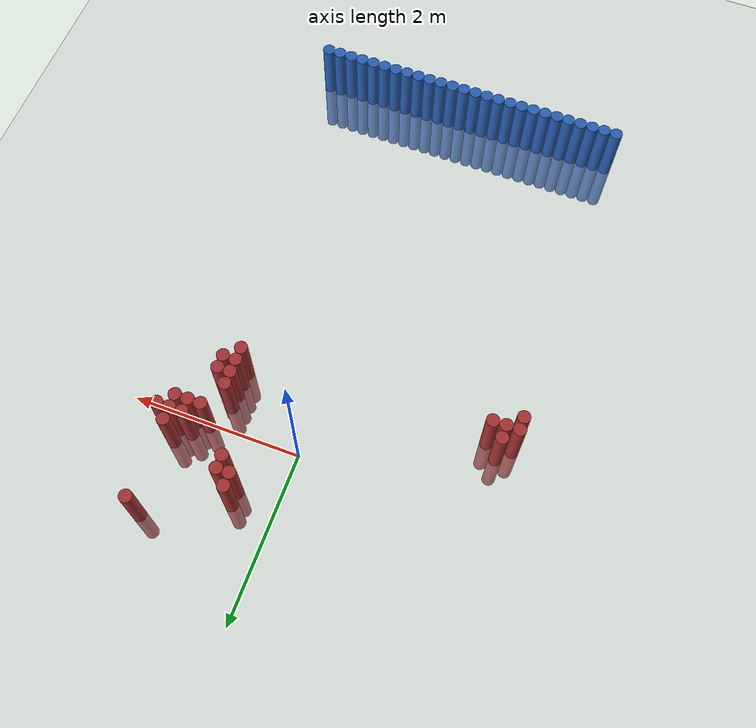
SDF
<sdf version="1.6">
 <world name="default">
  <model name="ground_plane">
   <static>1</static>
   <link name="link">
    <collision name="collision">
     <geometry><plane><normal>0 0 1</normal><size>100 100</size></plane></geometry>
     <surface><friction><ode><mu>100</mu><mu2>50</mu2></ode></friction></surface>
    </collision>
    <visual name="visual">
     <cast_shadows>0</cast_shadows>
     <geometry><plane><normal>0 0 1</normal><size>100 100</size></plane></geometry>
     <material>
      <script><uri>file://media/materials/scripts/gazebo.material</uri><name>Gazebo/Grey</name></script>
     </material>
    </visual>
   </link>
  </model>
  <model name="unit_cylinder_16">
   <static>1</static>
   <pose>1.525000 -4.925000 0.000000 0.000000 0.000000 0.000000</pose>
   <link name="link">
    <inertial>
     <mass>1</mass>
     <inertia><ixx>0.145833</ixx><ixy>0</ixy><ixz>0</ixz><iyy>0.145833</iyy><iyz>0</iyz><izz>0.125</izz></inertia>
    </inertial>
    <collision name="collision">
     <geometry><cylinder><radius>0.075000</radius><length>1.5</length></cylinder></geometry>
    </collision>
    <visual name="visual">
     <geometry><cylinder><radius>0.075000</radius><length>1.5</length></cylinder></geometry>
     <material>
      <ambient>0.152000 0.379000 0.720000 1</ambient>
      <diffuse>0.152000 0.379000 0.720000 1</diffuse>
     </material>
     <material>
      <script><name>Gazebo/Grey</name><uri>file://media/materials/scripts/gazebo.material</uri></script>
     </material>
    </visual>
   </link>
  </model>
  <model name="unit_cylinder_17">
   <static>1</static>
   <pose>1.375000 -4.925000 0.000000 0.000000 0.000000 0.000000</pose>
   <link name="link">
    <inertial>
     <mass>1</mass>
     <inertia><ixx>0.145833</ixx><ixy>0</ixy><ixz>0</ixz><iyy>0.145833</iyy><iyz>0</iyz><izz>0.125</izz></inertia>
    </inertial>
    <collision name="collision">
     <geometry><cylinder><radius>0.075000</radius><length>1.5</length></cylinder></geometry>
    </collision>
    <visual name="visual">
     <geometry><cylinder><radius>0.075000</radius><length>1.5</length></cylinder></geometry>
     <material>
      <ambient>0.152000 0.379000 0.720000 1</ambient>
      <diffuse>0.152000 0.379000 0.720000 1</diffuse>
     </material>
     <material>
      <script><name>Gazebo/Grey</name><uri>file://media/materials/scripts/gazebo.material</uri></script>
     </material>
    </visual>
   </link>
  </model>
  <model name="unit_cylinder_18">
   <static>1</static>
   <pose>1.225000 -4.925000 0.000000 0.000000 0.000000 0.000000</pose>
   <link name="link">
    <inertial>
     <mass>1</mass>
     <inertia><ixx>0.145833</ixx><ixy>0</ixy><ixz>0</ixz><iyy>0.145833</iyy><iyz>0</iyz><izz>0.125</izz></inertia>
    </inertial>
    <collision name="collision">
     <geometry><cylinder><radius>0.075000</radius><length>1.5</length></cylinder></geometry>
    </collision>
    <visual name="visual">
     <geometry><cylinder><radius>0.075000</radius><length>1.5</length></cylinder></geometry>
     <material>
      <ambient>0.152000 0.379000 0.720000 1</ambient>
      <diffuse>0.152000 0.379000 0.720000 1</diffuse>
     </material>
     <material>
      <script><name>Gazebo/Grey</name><uri>file://media/materials/scripts/gazebo.material</uri></script>
     </material>
    </visual>
   </link>
  </model>
  <model name="unit_cylinder_19">
   <static>1</static>
   <pose>1.075000 -4.925000 0.000000 0.000000 0.000000 0.000000</pose>
   <link name="link">
    <inertial>
     <mass>1</mass>
     <inertia><ixx>0.145833</ixx><ixy>0</ixy><ixz>0</ixz><iyy>0.145833</iyy><iyz>0</iyz><izz>0.125</izz></inertia>
    </inertial>
    <collision name="collision">
     <geometry><cylinder><radius>0.075000</radius><length>1.5</length></cylinder></geometry>
    </collision>
    <visual name="visual">
     <geometry><cylinder><radius>0.075000</radius><length>1.5</length></cylinder></geometry>
     <material>
      <ambient>0.152000 0.379000 0.720000 1</ambient>
      <diffuse>0.152000 0.379000 0.720000 1</diffuse>
     </material>
     <material>
      <script><name>Gazebo/Grey</name><uri>file://media/materials/scripts/gazebo.material</uri></script>
     </material>
    </visual>
   </link>
  </model>
  <model name="unit_cylinder_20">
   <static>1</static>
   <pose>0.925000 -4.925000 0.000000 0.000000 0.000000 0.000000</pose>
   <link name="link">
    <inertial>
     <mass>1</mass>
     <inertia><ixx>0.145833</ixx><ixy>0</ixy><ixz>0</ixz><iyy>0.145833</iyy><iyz>0</iyz><izz>0.125</izz></inertia>
    </inertial>
    <collision name="collision">
     <geometry><cylinder><radius>0.075000</radius><length>1.5</length></cylinder></geometry>
    </collision>
    <visual name="visual">
     <geometry><cylinder><radius>0.075000</radius><length>1.5</length></cylinder></geometry>
     <material>
      <ambient>0.152000 0.379000 0.720000 1</ambient>
      <diffuse>0.152000 0.379000 0.720000 1</diffuse>
     </material>
     <material>
      <script><name>Gazebo/Grey</name><uri>file://media/materials/scripts/gazebo.material</uri></script>
     </material>
    </visual>
   </link>
  </model>
  <model name="unit_cylinder_21">
   <static>1</static>
   <pose>0.775000 -4.925000 0.000000 0.000000 0.000000 0.000000</pose>
   <link name="link">
    <inertial>
     <mass>1</mass>
     <inertia><ixx>0.145833</ixx><ixy>0</ixy><ixz>0</ixz><iyy>0.145833</iyy><iyz>0</iyz><izz>0.125</izz></inertia>
    </inertial>
    <collision name="collision">
     <geometry><cylinder><radius>0.075000</radius><length>1.5</length></cylinder></geometry>
    </collision>
    <visual name="visual">
     <geometry><cylinder><radius>0.075000</radius><length>1.5</length></cylinder></geometry>
     <material>
      <ambient>0.152000 0.379000 0.720000 1</ambient>
      <diffuse>0.152000 0.379000 0.720000 1</diffuse>
     </material>
     <material>
      <script><name>Gazebo/Grey</name><uri>file://media/materials/scripts/gazebo.material</uri></script>
     </material>
    </visual>
   </link>
  </model>
  <model name="unit_cylinder_22">
   <static>1</static>
   <pose>0.625000 -4.925000 0.000000 0.000000 0.000000 0.000000</pose>
   <link name="link">
    <inertial>
     <mass>1</mass>
     <inertia><ixx>0.145833</ixx><ixy>0</ixy><ixz>0</ixz><iyy>0.145833</iyy><iyz>0</iyz><izz>0.125</izz></inertia>
    </inertial>
    <collision name="collision">
     <geometry><cylinder><radius>0.075000</radius><length>1.5</length></cylinder></geometry>
    </collision>
    <visual name="visual">
     <geometry><cylinder><radius>0.075000</radius><length>1.5</length></cylinder></geometry>
     <material>
      <ambient>0.152000 0.379000 0.720000 1</ambient>
      <diffuse>0.152000 0.379000 0.720000 1</diffuse>
     </material>
     <material>
      <script><name>Gazebo/Grey</name><uri>file://media/materials/scripts/gazebo.material</uri></script>
     </material>
    </visual>
   </link>
  </model>
  <model name="unit_cylinder_23">
   <static>1</static>
   <pose>0.475000 -4.925000 0.000000 0.000000 0.000000 0.000000</pose>
   <link name="link">
    <inertial>
     <mass>1</mass>
     <inertia><ixx>0.145833</ixx><ixy>0</ixy><ixz>0</ixz><iyy>0.145833</iyy><iyz>0</iyz><izz>0.125</izz></inertia>
    </inertial>
    <collision name="collision">
     <geometry><cylinder><radius>0.075000</radius><length>1.5</length></cylinder></geometry>
    </collision>
    <visual name="visual">
     <geometry><cylinder><radius>0.075000</radius><length>1.5</length></cylinder></geometry>
     <material>
      <ambient>0.152000 0.379000 0.720000 1</ambient>
      <diffuse>0.152000 0.379000 0.720000 1</diffuse>
     </material>
     <material>
      <script><name>Gazebo/Grey</name><uri>file://media/materials/scripts/gazebo.material</uri></script>
     </material>
    </visual>
   </link>
  </model>
  <model name="unit_cylinder_24">
   <static>1</static>
   <pose>0.325000 -4.925000 0.000000 0.000000 0.000000 0.000000</pose>
   <link name="link">
    <inertial>
     <mass>1</mass>
     <inertia><ixx>0.145833</ixx><ixy>0</ixy><ixz>0</ixz><iyy>0.145833</iyy><iyz>0</iyz><izz>0.125</izz></inertia>
    </inertial>
    <collision name="collision">
     <geometry><cylinder><radius>0.075000</radius><length>1.5</length></cylinder></geometry>
    </collision>
    <visual name="visual">
     <geometry><cylinder><radius>0.075000</radius><length>1.5</length></cylinder></geometry>
     <material>
      <ambient>0.152000 0.379000 0.720000 1</ambient>
      <diffuse>0.152000 0.379000 0.720000 1</diffuse>
     </material>
     <material>
      <script><name>Gazebo/Grey</name><uri>file://media/materials/scripts/gazebo.material</uri></script>
     </material>
    </visual>
   </link>
  </model>
  <model name="unit_cylinder_25">
   <static>1</static>
   <pose>0.175000 -4.925000 0.000000 0.000000 0.000000 0.000000</pose>
   <link name="link">
    <inertial>
     <mass>1</mass>
     <inertia><ixx>0.145833</ixx><ixy>0</ixy><ixz>0</ixz><iyy>0.145833</iyy><iyz>0</iyz><izz>0.125</izz></inertia>
    </inertial>
    <collision name="collision">
     <geometry><cylinder><radius>0.075000</radius><length>1.5</length></cylinder></geometry>
    </collision>
    <visual name="visual">
     <geometry><cylinder><radius>0.075000</radius><length>1.5</length></cylinder></geometry>
     <material>
      <ambient>0.152000 0.379000 0.720000 1</ambient>
      <diffuse>0.152000 0.379000 0.720000 1</diffuse>
     </material>
     <material>
      <script><name>Gazebo/Grey</name><uri>file://media/materials/scripts/gazebo.material</uri></script>
     </material>
    </visual>
   </link>
  </model>
  <model name="unit_cylinder_26">
   <static>1</static>
   <pose>0.025000 -4.925000 0.000000 0.000000 0.000000 0.000000</pose>
   <link name="link">
    <inertial>
     <mass>1</mass>
     <inertia><ixx>0.145833</ixx><ixy>0</ixy><ixz>0</ixz><iyy>0.145833</iyy><iyz>0</iyz><izz>0.125</izz></inertia>
    </inertial>
    <collision name="collision">
     <geometry><cylinder><radius>0.075000</radius><length>1.5</length></cylinder></geometry>
    </collision>
    <visual name="visual">
     <geometry><cylinder><radius>0.075000</radius><length>1.5</length></cylinder></geometry>
     <material>
      <ambient>0.152000 0.379000 0.720000 1</ambient>
      <diffuse>0.152000 0.379000 0.720000 1</diffuse>
     </material>
     <material>
      <script><name>Gazebo/Grey</name><uri>file://media/materials/scripts/gazebo.material</uri></script>
     </material>
    </visual>
   </link>
  </model>
  <model name="unit_cylinder_27">
   <static>1</static>
   <pose>-0.125000 -4.925000 0.000000 0.000000 0.000000 0.000000</pose>
   <link name="link">
    <inertial>
     <mass>1</mass>
     <inertia><ixx>0.145833</ixx><ixy>0</ixy><ixz>0</ixz><iyy>0.145833</iyy><iyz>0</iyz><izz>0.125</izz></inertia>
    </inertial>
    <collision name="collision">
     <geometry><cylinder><radius>0.075000</radius><length>1.5</length></cylinder></geometry>
    </collision>
    <visual name="visual">
     <geometry><cylinder><radius>0.075000</radius><length>1.5</length></cylinder></geometry>
     <material>
      <ambient>0.152000 0.379000 0.720000 1</ambient>
      <diffuse>0.152000 0.379000 0.720000 1</diffuse>
     </material>
     <material>
      <script><name>Gazebo/Grey</name><uri>file://media/materials/scripts/gazebo.material</uri></script>
     </material>
    </visual>
   </link>
  </model>
  <model name="unit_cylinder_28">
   <static>1</static>
   <pose>-0.275000 -4.925000 0.000000 0.000000 0.000000 0.000000</pose>
   <link name="link">
    <inertial>
     <mass>1</mass>
     <inertia><ixx>0.145833</ixx><ixy>0</ixy><ixz>0</ixz><iyy>0.145833</iyy><iyz>0</iyz><izz>0.125</izz></inertia>
    </inertial>
    <collision name="collision">
     <geometry><cylinder><radius>0.075000</radius><length>1.5</length></cylinder></geometry>
    </collision>
    <visual name="visual">
     <geometry><cylinder><radius>0.075000</radius><length>1.5</length></cylinder></geometry>
     <material>
      <ambient>0.152000 0.379000 0.720000 1</ambient>
      <diffuse>0.152000 0.379000 0.720000 1</diffuse>
     </material>
     <material>
      <script><name>Gazebo/Grey</name><uri>file://media/materials/scripts/gazebo.material</uri></script>
     </material>
    </visual>
   </link>
  </model>
  <model name="unit_cylinder_29">
   <static>1</static>
   <pose>-0.425000 -4.925000 0.000000 0.000000 0.000000 0.000000</pose>
   <link name="link">
    <inertial>
     <mass>1</mass>
     <inertia><ixx>0.145833</ixx><ixy>0</ixy><ixz>0</ixz><iyy>0.145833</iyy><iyz>0</iyz><izz>0.125</izz></inertia>
    </inertial>
    <collision name="collision">
     <geometry><cylinder><radius>0.075000</radius><length>1.5</length></cylinder></geometry>
    </collision>
    <visual name="visual">
     <geometry><cylinder><radius>0.075000</radius><length>1.5</length></cylinder></geometry>
     <material>
      <ambient>0.152000 0.379000 0.720000 1</ambient>
      <diffuse>0.152000 0.379000 0.720000 1</diffuse>
     </material>
     <material>
      <script><name>Gazebo/Grey</name><uri>file://media/materials/scripts/gazebo.material</uri></script>
     </material>
    </visual>
   </link>
  </model>
  <model name="unit_cylinder_30">
   <static>1</static>
   <pose>-0.575000 -4.925000 0.000000 0.000000 0.000000 0.000000</pose>
   <link name="link">
    <inertial>
     <mass>1</mass>
     <inertia><ixx>0.145833</ixx><ixy>0</ixy><ixz>0</ixz><iyy>0.145833</iyy><iyz>0</iyz><izz>0.125</izz></inertia>
    </inertial>
    <collision name="collision">
     <geometry><cylinder><radius>0.075000</radius><length>1.5</length></cylinder></geometry>
    </collision>
    <visual name="visual">
     <geometry><cylinder><radius>0.075000</radius><length>1.5</length></cylinder></geometry>
     <material>
      <ambient>0.152000 0.379000 0.720000 1</ambient>
      <diffuse>0.152000 0.379000 0.720000 1</diffuse>
     </material>
     <material>
      <script><name>Gazebo/Grey</name><uri>file://media/materials/scripts/gazebo.material</uri></script>
     </material>
    </visual>
   </link>
  </model>
  <model name="unit_cylinder_31">
   <static>1</static>
   <pose>-0.725000 -4.925000 0.000000 0.000000 0.000000 0.000000</pose>
   <link name="link">
    <inertial>
     <mass>1</mass>
     <inertia><ixx>0.145833</ixx><ixy>0</ixy><ixz>0</ixz><iyy>0.145833</iyy><iyz>0</iyz><izz>0.125</izz></inertia>
    </inertial>
    <collision name="collision">
     <geometry><cylinder><radius>0.075000</radius><length>1.5</length></cylinder></geometry>
    </collision>
    <visual name="visual">
     <geometry><cylinder><radius>0.075000</radius><length>1.5</length></cylinder></geometry>
     <material>
      <ambient>0.152000 0.379000 0.720000 1</ambient>
      <diffuse>0.152000 0.379000 0.720000 1</diffuse>
     </material>
     <material>
      <script><name>Gazebo/Grey</name><uri>file://media/materials/scripts/gazebo.material</uri></script>
     </material>
    </visual>
   </link>
  </model>
  <model name="unit_cylinder_32">
   <static>1</static>
   <pose>-0.875000 -4.925000 0.000000 0.000000 0.000000 0.000000</pose>
   <link name="link">
    <inertial>
     <mass>1</mass>
     <inertia><ixx>0.145833</ixx><ixy>0</ixy><ixz>0</ixz><iyy>0.145833</iyy><iyz>0</iyz><izz>0.125</izz></inertia>
    </inertial>
    <collision name="collision">
     <geometry><cylinder><radius>0.075000</radius><length>1.5</length></cylinder></geometry>
    </collision>
    <visual name="visual">
     <geometry><cylinder><radius>0.075000</radius><length>1.5</length></cylinder></geometry>
     <material>
      <ambient>0.152000 0.379000 0.720000 1</ambient>
      <diffuse>0.152000 0.379000 0.720000 1</diffuse>
     </material>
     <material>
      <script><name>Gazebo/Grey</name><uri>file://media/materials/scripts/gazebo.material</uri></script>
     </material>
    </visual>
   </link>
  </model>
  <model name="unit_cylinder_33">
   <static>1</static>
   <pose>-1.025000 -4.925000 0.000000 0.000000 0.000000 0.000000</pose>
   <link name="link">
    <inertial>
     <mass>1</mass>
     <inertia><ixx>0.145833</ixx><ixy>0</ixy><ixz>0</ixz><iyy>0.145833</iyy><iyz>0</iyz><izz>0.125</izz></inertia>
    </inertial>
    <collision name="collision">
     <geometry><cylinder><radius>0.075000</radius><length>1.5</length></cylinder></geometry>
    </collision>
    <visual name="visual">
     <geometry><cylinder><radius>0.075000</radius><length>1.5</length></cylinder></geometry>
     <material>
      <ambient>0.152000 0.379000 0.720000 1</ambient>
      <diffuse>0.152000 0.379000 0.720000 1</diffuse>
     </material>
     <material>
      <script><name>Gazebo/Grey</name><uri>file://media/materials/scripts/gazebo.material</uri></script>
     </material>
    </visual>
   </link>
  </model>
  <model name="unit_cylinder_34">
   <static>1</static>
   <pose>-1.175000 -4.925000 0.000000 0.000000 0.000000 0.000000</pose>
   <link name="link">
    <inertial>
     <mass>1</mass>
     <inertia><ixx>0.145833</ixx><ixy>0</ixy><ixz>0</ixz><iyy>0.145833</iyy><iyz>0</iyz><izz>0.125</izz></inertia>
    </inertial>
    <collision name="collision">
     <geometry><cylinder><radius>0.075000</radius><length>1.5</length></cylinder></geometry>
    </collision>
    <visual name="visual">
     <geometry><cylinder><radius>0.075000</radius><length>1.5</length></cylinder></geometry>
     <material>
      <ambient>0.152000 0.379000 0.720000 1</ambient>
      <diffuse>0.152000 0.379000 0.720000 1</diffuse>
     </material>
     <material>
      <script><name>Gazebo/Grey</name><uri>file://media/materials/scripts/gazebo.material</uri></script>
     </material>
    </visual>
   </link>
  </model>
  <model name="unit_cylinder_35">
   <static>1</static>
   <pose>-1.325000 -4.925000 0.000000 0.000000 0.000000 0.000000</pose>
   <link name="link">
    <inertial>
     <mass>1</mass>
     <inertia><ixx>0.145833</ixx><ixy>0</ixy><ixz>0</ixz><iyy>0.145833</iyy><iyz>0</iyz><izz>0.125</izz></inertia>
    </inertial>
    <collision name="collision">
     <geometry><cylinder><radius>0.075000</radius><length>1.5</length></cylinder></geometry>
    </collision>
    <visual name="visual">
     <geometry><cylinder><radius>0.075000</radius><length>1.5</length></cylinder></geometry>
     <material>
      <ambient>0.152000 0.379000 0.720000 1</ambient>
      <diffuse>0.152000 0.379000 0.720000 1</diffuse>
     </material>
     <material>
      <script><name>Gazebo/Grey</name><uri>file://media/materials/scripts/gazebo.material</uri></script>
     </material>
    </visual>
   </link>
  </model>
  <model name="unit_cylinder_36">
   <static>1</static>
   <pose>-1.475000 -4.925000 0.000000 0.000000 0.000000 0.000000</pose>
   <link name="link">
    <inertial>
     <mass>1</mass>
     <inertia><ixx>0.145833</ixx><ixy>0</ixy><ixz>0</ixz><iyy>0.145833</iyy><iyz>0</iyz><izz>0.125</izz></inertia>
    </inertial>
    <collision name="collision">
     <geometry><cylinder><radius>0.075000</radius><length>1.5</length></cylinder></geometry>
    </collision>
    <visual name="visual">
     <geometry><cylinder><radius>0.075000</radius><length>1.5</length></cylinder></geometry>
     <material>
      <ambient>0.152000 0.379000 0.720000 1</ambient>
      <diffuse>0.152000 0.379000 0.720000 1</diffuse>
     </material>
     <material>
      <script><name>Gazebo/Grey</name><uri>file://media/materials/scripts/gazebo.material</uri></script>
     </material>
    </visual>
   </link>
  </model>
  <model name="unit_cylinder_37">
   <static>1</static>
   <pose>-1.625000 -4.925000 0.000000 0.000000 0.000000 0.000000</pose>
   <link name="link">
    <inertial>
     <mass>1</mass>
     <inertia><ixx>0.145833</ixx><ixy>0</ixy><ixz>0</ixz><iyy>0.145833</iyy><iyz>0</iyz><izz>0.125</izz></inertia>
    </inertial>
    <collision name="collision">
     <geometry><cylinder><radius>0.075000</radius><length>1.5</length></cylinder></geometry>
    </collision>
    <visual name="visual">
     <geometry><cylinder><radius>0.075000</radius><length>1.5</length></cylinder></geometry>
     <material>
      <ambient>0.152000 0.379000 0.720000 1</ambient>
      <diffuse>0.152000 0.379000 0.720000 1</diffuse>
     </material>
     <material>
      <script><name>Gazebo/Grey</name><uri>file://media/materials/scripts/gazebo.material</uri></script>
     </material>
    </visual>
   </link>
  </model>
  <model name="unit_cylinder_38">
   <static>1</static>
   <pose>-1.775000 -4.925000 0.000000 0.000000 0.000000 0.000000</pose>
   <link name="link">
    <inertial>
     <mass>1</mass>
     <inertia><ixx>0.145833</ixx><ixy>0</ixy><ixz>0</ixz><iyy>0.145833</iyy><iyz>0</iyz><izz>0.125</izz></inertia>
    </inertial>
    <collision name="collision">
     <geometry><cylinder><radius>0.075000</radius><length>1.5</length></cylinder></geometry>
    </collision>
    <visual name="visual">
     <geometry><cylinder><radius>0.075000</radius><length>1.5</length></cylinder></geometry>
     <material>
      <ambient>0.152000 0.379000 0.720000 1</ambient>
      <diffuse>0.152000 0.379000 0.720000 1</diffuse>
     </material>
     <material>
      <script><name>Gazebo/Grey</name><uri>file://media/materials/scripts/gazebo.material</uri></script>
     </material>
    </visual>
   </link>
  </model>
  <model name="unit_cylinder_39">
   <static>1</static>
   <pose>-1.925000 -4.925000 0.000000 0.000000 0.000000 0.000000</pose>
   <link name="link">
    <inertial>
     <mass>1</mass>
     <inertia><ixx>0.145833</ixx><ixy>0</ixy><ixz>0</ixz><iyy>0.145833</iyy><iyz>0</iyz><izz>0.125</izz></inertia>
    </inertial>
    <collision name="collision">
     <geometry><cylinder><radius>0.075000</radius><length>1.5</length></cylinder></geometry>
    </collision>
    <visual name="visual">
     <geometry><cylinder><radius>0.075000</radius><length>1.5</length></cylinder></geometry>
     <material>
      <ambient>0.152000 0.379000 0.720000 1</ambient>
      <diffuse>0.152000 0.379000 0.720000 1</diffuse>
     </material>
     <material>
      <script><name>Gazebo/Grey</name><uri>file://media/materials/scripts/gazebo.material</uri></script>
     </material>
    </visual>
   </link>
  </model>
  <model name="unit_cylinder_40">
   <static>1</static>
   <pose>-2.075000 -4.925000 0.000000 0.000000 0.000000 0.000000</pose>
   <link name="link">
    <inertial>
     <mass>1</mass>
     <inertia><ixx>0.145833</ixx><ixy>0</ixy><ixz>0</ixz><iyy>0.145833</iyy><iyz>0</iyz><izz>0.125</izz></inertia>
    </inertial>
    <collision name="collision">
     <geometry><cylinder><radius>0.075000</radius><length>1.5</length></cylinder></geometry>
    </collision>
    <visual name="visual">
     <geometry><cylinder><radius>0.075000</radius><length>1.5</length></cylinder></geometry>
     <material>
      <ambient>0.152000 0.379000 0.720000 1</ambient>
      <diffuse>0.152000 0.379000 0.720000 1</diffuse>
     </material>
     <material>
      <script><name>Gazebo/Grey</name><uri>file://media/materials/scripts/gazebo.material</uri></script>
     </material>
    </visual>
   </link>
  </model>
  <model name="unit_cylinder_41">
   <static>1</static>
   <pose>-2.225000 -4.925000 0.000000 0.000000 0.000000 0.000000</pose>
   <link name="link">
    <inertial>
     <mass>1</mass>
     <inertia><ixx>0.145833</ixx><ixy>0</ixy><ixz>0</ixz><iyy>0.145833</iyy><iyz>0</iyz><izz>0.125</izz></inertia>
    </inertial>
    <collision name="collision">
     <geometry><cylinder><radius>0.075000</radius><length>1.5</length></cylinder></geometry>
    </collision>
    <visual name="visual">
     <geometry><cylinder><radius>0.075000</radius><length>1.5</length></cylinder></geometry>
     <material>
      <ambient>0.152000 0.379000 0.720000 1</ambient>
      <diffuse>0.152000 0.379000 0.720000 1</diffuse>
     </material>
     <material>
      <script><name>Gazebo/Grey</name><uri>file://media/materials/scripts/gazebo.material</uri></script>
     </material>
    </visual>
   </link>
  </model>
  <model name="unit_cylinder_300">
   <static>1</static>
   <pose>-2.225000 -1.025000 0.000000 0.000000 0.000000 0.000000</pose>
   <link name="link">
    <inertial>
     <mass>1</mass>
     <inertia><ixx>0.145833</ixx><ixy>0</ixy><ixz>0</ixz><iyy>0.145833</iyy><iyz>0</iyz><izz>0.125</izz></inertia>
    </inertial>
    <collision name="collision">
     <geometry><cylinder><radius>0.075000</radius><length>1.5</length></cylinder></geometry>
    </collision>
    <visual name="visual">
     <geometry><cylinder><radius>0.075000</radius><length>1.5</length></cylinder></geometry>
     <material>
      <ambient>0.648000 0.192000 0.192000 1</ambient>
      <diffuse>0.648000 0.192000 0.192000 1</diffuse>
     </material>
     <material>
      <script><name>Gazebo/Grey</name><uri>file://media/materials/scripts/gazebo.material</uri></script>
     </material>
    </visual>
   </link>
  </model>
  <model name="unit_cylinder_301">
   <static>1</static>
   <pose>-2.225000 -0.875000 0.000000 0.000000 0.000000 0.000000</pose>
   <link name="link">
    <inertial>
     <mass>1</mass>
     <inertia><ixx>0.145833</ixx><ixy>0</ixy><ixz>0</ixz><iyy>0.145833</iyy><iyz>0</iyz><izz>0.125</izz></inertia>
    </inertial>
    <collision name="collision">
     <geometry><cylinder><radius>0.075000</radius><length>1.5</length></cylinder></geometry>
    </collision>
    <visual name="visual">
     <geometry><cylinder><radius>0.075000</radius><length>1.5</length></cylinder></geometry>
     <material>
      <ambient>0.648000 0.192000 0.192000 1</ambient>
      <diffuse>0.648000 0.192000 0.192000 1</diffuse>
     </material>
     <material>
      <script><name>Gazebo/Grey</name><uri>file://media/materials/scripts/gazebo.material</uri></script>
     </material>
    </visual>
   </link>
  </model>
  <model name="unit_cylinder_305">
   <static>1</static>
   <pose>-2.075000 -0.875000 0.000000 0.000000 0.000000 0.000000</pose>
   <link name="link">
    <inertial>
     <mass>1</mass>
     <inertia><ixx>0.145833</ixx><ixy>0</ixy><ixz>0</ixz><iyy>0.145833</iyy><iyz>0</iyz><izz>0.125</izz></inertia>
    </inertial>
    <collision name="collision">
     <geometry><cylinder><radius>0.075000</radius><length>1.5</length></cylinder></geometry>
    </collision>
    <visual name="visual">
     <geometry><cylinder><radius>0.075000</radius><length>1.5</length></cylinder></geometry>
     <material>
      <ambient>0.648000 0.192000 0.192000 1</ambient>
      <diffuse>0.648000 0.192000 0.192000 1</diffuse>
     </material>
     <material>
      <script><name>Gazebo/Grey</name><uri>file://media/materials/scripts/gazebo.material</uri></script>
     </material>
    </visual>
   </link>
  </model>
  <model name="unit_cylinder_306">
   <static>1</static>
   <pose>-2.075000 -0.725000 0.000000 0.000000 0.000000 0.000000</pose>
   <link name="link">
    <inertial>
     <mass>1</mass>
     <inertia><ixx>0.145833</ixx><ixy>0</ixy><ixz>0</ixz><iyy>0.145833</iyy><iyz>0</iyz><izz>0.125</izz></inertia>
    </inertial>
    <collision name="collision">
     <geometry><cylinder><radius>0.075000</radius><length>1.5</length></cylinder></geometry>
    </collision>
    <visual name="visual">
     <geometry><cylinder><radius>0.075000</radius><length>1.5</length></cylinder></geometry>
     <material>
      <ambient>0.648000 0.192000 0.192000 1</ambient>
      <diffuse>0.648000 0.192000 0.192000 1</diffuse>
     </material>
     <material>
      <script><name>Gazebo/Grey</name><uri>file://media/materials/scripts/gazebo.material</uri></script>
     </material>
    </visual>
   </link>
  </model>
  <model name="unit_cylinder_310">
   <static>1</static>
   <pose>-1.925000 -0.875000 0.000000 0.000000 0.000000 0.000000</pose>
   <link name="link">
    <inertial>
     <mass>1</mass>
     <inertia><ixx>0.145833</ixx><ixy>0</ixy><ixz>0</ixz><iyy>0.145833</iyy><iyz>0</iyz><izz>0.125</izz></inertia>
    </inertial>
    <collision name="collision">
     <geometry><cylinder><radius>0.075000</radius><length>1.5</length></cylinder></geometry>
    </collision>
    <visual name="visual">
     <geometry><cylinder><radius>0.075000</radius><length>1.5</length></cylinder></geometry>
     <material>
      <ambient>0.648000 0.192000 0.192000 1</ambient>
      <diffuse>0.648000 0.192000 0.192000 1</diffuse>
     </material>
     <material>
      <script><name>Gazebo/Grey</name><uri>file://media/materials/scripts/gazebo.material</uri></script>
     </material>
    </visual>
   </link>
  </model>
  <model name="unit_cylinder_340">
   <static>1</static>
   <pose>0.475000 0.625000 0.000000 0.000000 0.000000 0.000000</pose>
   <link name="link">
    <inertial>
     <mass>1</mass>
     <inertia><ixx>0.145833</ixx><ixy>0</ixy><ixz>0</ixz><iyy>0.145833</iyy><iyz>0</iyz><izz>0.125</izz></inertia>
    </inertial>
    <collision name="collision">
     <geometry><cylinder><radius>0.075000</radius><length>1.5</length></cylinder></geometry>
    </collision>
    <visual name="visual">
     <geometry><cylinder><radius>0.075000</radius><length>1.5</length></cylinder></geometry>
     <material>
      <ambient>0.648000 0.192000 0.192000 1</ambient>
      <diffuse>0.648000 0.192000 0.192000 1</diffuse>
     </material>
     <material>
      <script><name>Gazebo/Grey</name><uri>file://media/materials/scripts/gazebo.material</uri></script>
     </material>
    </visual>
   </link>
  </model>
  <model name="unit_cylinder_341">
   <static>1</static>
   <pose>0.475000 0.775000 0.000000 0.000000 0.000000 0.000000</pose>
   <link name="link">
    <inertial>
     <mass>1</mass>
     <inertia><ixx>0.145833</ixx><ixy>0</ixy><ixz>0</ixz><iyy>0.145833</iyy><iyz>0</iyz><izz>0.125</izz></inertia>
    </inertial>
    <collision name="collision">
     <geometry><cylinder><radius>0.075000</radius><length>1.5</length></cylinder></geometry>
    </collision>
    <visual name="visual">
     <geometry><cylinder><radius>0.075000</radius><length>1.5</length></cylinder></geometry>
     <material>
      <ambient>0.648000 0.192000 0.192000 1</ambient>
      <diffuse>0.648000 0.192000 0.192000 1</diffuse>
     </material>
     <material>
      <script><name>Gazebo/Grey</name><uri>file://media/materials/scripts/gazebo.material</uri></script>
     </material>
    </visual>
   </link>
  </model>
  <model name="unit_cylinder_348">
   <static>1</static>
   <pose>0.625000 0.475000 0.000000 0.000000 0.000000 0.000000</pose>
   <link name="link">
    <inertial>
     <mass>1</mass>
     <inertia><ixx>0.145833</ixx><ixy>0</ixy><ixz>0</ixz><iyy>0.145833</iyy><iyz>0</iyz><izz>0.125</izz></inertia>
    </inertial>
    <collision name="collision">
     <geometry><cylinder><radius>0.075000</radius><length>1.5</length></cylinder></geometry>
    </collision>
    <visual name="visual">
     <geometry><cylinder><radius>0.075000</radius><length>1.5</length></cylinder></geometry>
     <material>
      <ambient>0.648000 0.192000 0.192000 1</ambient>
      <diffuse>0.648000 0.192000 0.192000 1</diffuse>
     </material>
     <material>
      <script><name>Gazebo/Grey</name><uri>file://media/materials/scripts/gazebo.material</uri></script>
     </material>
    </visual>
   </link>
  </model>
  <model name="unit_cylinder_349">
   <static>1</static>
   <pose>0.625000 0.625000 0.000000 0.000000 0.000000 0.000000</pose>
   <link name="link">
    <inertial>
     <mass>1</mass>
     <inertia><ixx>0.145833</ixx><ixy>0</ixy><ixz>0</ixz><iyy>0.145833</iyy><iyz>0</iyz><izz>0.125</izz></inertia>
    </inertial>
    <collision name="collision">
     <geometry><cylinder><radius>0.075000</radius><length>1.5</length></cylinder></geometry>
    </collision>
    <visual name="visual">
     <geometry><cylinder><radius>0.075000</radius><length>1.5</length></cylinder></geometry>
     <material>
      <ambient>0.648000 0.192000 0.192000 1</ambient>
      <diffuse>0.648000 0.192000 0.192000 1</diffuse>
     </material>
     <material>
      <script><name>Gazebo/Grey</name><uri>file://media/materials/scripts/gazebo.material</uri></script>
     </material>
    </visual>
   </link>
  </model>
  <model name="unit_cylinder_355">
   <static>1</static>
   <pose>0.925000 -0.725000 0.000000 0.000000 0.000000 0.000000</pose>
   <link name="link">
    <inertial>
     <mass>1</mass>
     <inertia><ixx>0.145833</ixx><ixy>0</ixy><ixz>0</ixz><iyy>0.145833</iyy><iyz>0</iyz><izz>0.125</izz></inertia>
    </inertial>
    <collision name="collision">
     <geometry><cylinder><radius>0.075000</radius><length>1.5</length></cylinder></geometry>
    </collision>
    <visual name="visual">
     <geometry><cylinder><radius>0.075000</radius><length>1.5</length></cylinder></geometry>
     <material>
      <ambient>0.648000 0.192000 0.192000 1</ambient>
      <diffuse>0.648000 0.192000 0.192000 1</diffuse>
     </material>
     <material>
      <script><name>Gazebo/Grey</name><uri>file://media/materials/scripts/gazebo.material</uri></script>
     </material>
    </visual>
   </link>
  </model>
  <model name="unit_cylinder_356">
   <static>1</static>
   <pose>0.925000 -0.575000 0.000000 0.000000 0.000000 0.000000</pose>
   <link name="link">
    <inertial>
     <mass>1</mass>
     <inertia><ixx>0.145833</ixx><ixy>0</ixy><ixz>0</ixz><iyy>0.145833</iyy><iyz>0</iyz><izz>0.125</izz></inertia>
    </inertial>
    <collision name="collision">
     <geometry><cylinder><radius>0.075000</radius><length>1.5</length></cylinder></geometry>
    </collision>
    <visual name="visual">
     <geometry><cylinder><radius>0.075000</radius><length>1.5</length></cylinder></geometry>
     <material>
      <ambient>0.648000 0.192000 0.192000 1</ambient>
      <diffuse>0.648000 0.192000 0.192000 1</diffuse>
     </material>
     <material>
      <script><name>Gazebo/Grey</name><uri>file://media/materials/scripts/gazebo.material</uri></script>
     </material>
    </visual>
   </link>
  </model>
  <model name="unit_cylinder_357">
   <static>1</static>
   <pose>0.925000 -0.425000 0.000000 0.000000 0.000000 0.000000</pose>
   <link name="link">
    <inertial>
     <mass>1</mass>
     <inertia><ixx>0.145833</ixx><ixy>0</ixy><ixz>0</ixz><iyy>0.145833</iyy><iyz>0</iyz><izz>0.125</izz></inertia>
    </inertial>
    <collision name="collision">
     <geometry><cylinder><radius>0.075000</radius><length>1.5</length></cylinder></geometry>
    </collision>
    <visual name="visual">
     <geometry><cylinder><radius>0.075000</radius><length>1.5</length></cylinder></geometry>
     <material>
      <ambient>0.648000 0.192000 0.192000 1</ambient>
      <diffuse>0.648000 0.192000 0.192000 1</diffuse>
     </material>
     <material>
      <script><name>Gazebo/Grey</name><uri>file://media/materials/scripts/gazebo.material</uri></script>
     </material>
    </visual>
   </link>
  </model>
  <model name="unit_cylinder_358">
   <static>1</static>
   <pose>0.925000 -0.275000 0.000000 0.000000 0.000000 0.000000</pose>
   <link name="link">
    <inertial>
     <mass>1</mass>
     <inertia><ixx>0.145833</ixx><ixy>0</ixy><ixz>0</ixz><iyy>0.145833</iyy><iyz>0</iyz><izz>0.125</izz></inertia>
    </inertial>
    <collision name="collision">
     <geometry><cylinder><radius>0.075000</radius><length>1.5</length></cylinder></geometry>
    </collision>
    <visual name="visual">
     <geometry><cylinder><radius>0.075000</radius><length>1.5</length></cylinder></geometry>
     <material>
      <ambient>0.648000 0.192000 0.192000 1</ambient>
      <diffuse>0.648000 0.192000 0.192000 1</diffuse>
     </material>
     <material>
      <script><name>Gazebo/Grey</name><uri>file://media/materials/scripts/gazebo.material</uri></script>
     </material>
    </visual>
   </link>
  </model>
  <model name="unit_cylinder_362">
   <static>1</static>
   <pose>1.075000 -0.575000 0.000000 0.000000 0.000000 0.000000</pose>
   <link name="link">
    <inertial>
     <mass>1</mass>
     <inertia><ixx>0.145833</ixx><ixy>0</ixy><ixz>0</ixz><iyy>0.145833</iyy><iyz>0</iyz><izz>0.125</izz></inertia>
    </inertial>
    <collision name="collision">
     <geometry><cylinder><radius>0.075000</radius><length>1.5</length></cylinder></geometry>
    </collision>
    <visual name="visual">
     <geometry><cylinder><radius>0.075000</radius><length>1.5</length></cylinder></geometry>
     <material>
      <ambient>0.648000 0.192000 0.192000 1</ambient>
      <diffuse>0.648000 0.192000 0.192000 1</diffuse>
     </material>
     <material>
      <script><name>Gazebo/Grey</name><uri>file://media/materials/scripts/gazebo.material</uri></script>
     </material>
    </visual>
   </link>
  </model>
  <model name="unit_cylinder_363">
   <static>1</static>
   <pose>1.075000 -0.425000 0.000000 0.000000 0.000000 0.000000</pose>
   <link name="link">
    <inertial>
     <mass>1</mass>
     <inertia><ixx>0.145833</ixx><ixy>0</ixy><ixz>0</ixz><iyy>0.145833</iyy><iyz>0</iyz><izz>0.125</izz></inertia>
    </inertial>
    <collision name="collision">
     <geometry><cylinder><radius>0.075000</radius><length>1.5</length></cylinder></geometry>
    </collision>
    <visual name="visual">
     <geometry><cylinder><radius>0.075000</radius><length>1.5</length></cylinder></geometry>
     <material>
      <ambient>0.648000 0.192000 0.192000 1</ambient>
      <diffuse>0.648000 0.192000 0.192000 1</diffuse>
     </material>
     <material>
      <script><name>Gazebo/Grey</name><uri>file://media/materials/scripts/gazebo.material</uri></script>
     </material>
    </visual>
   </link>
  </model>
  <model name="unit_cylinder_364">
   <static>1</static>
   <pose>1.075000 0.025000 0.000000 0.000000 0.000000 0.000000</pose>
   <link name="link">
    <inertial>
     <mass>1</mass>
     <inertia><ixx>0.145833</ixx><ixy>0</ixy><ixz>0</ixz><iyy>0.145833</iyy><iyz>0</iyz><izz>0.125</izz></inertia>
    </inertial>
    <collision name="collision">
     <geometry><cylinder><radius>0.075000</radius><length>1.5</length></cylinder></geometry>
    </collision>
    <visual name="visual">
     <geometry><cylinder><radius>0.075000</radius><length>1.5</length></cylinder></geometry>
     <material>
      <ambient>0.648000 0.192000 0.192000 1</ambient>
      <diffuse>0.648000 0.192000 0.192000 1</diffuse>
     </material>
     <material>
      <script><name>Gazebo/Grey</name><uri>file://media/materials/scripts/gazebo.material</uri></script>
     </material>
    </visual>
   </link>
  </model>
  <model name="unit_cylinder_366">
   <static>1</static>
   <pose>1.225000 0.025000 0.000000 0.000000 0.000000 0.000000</pose>
   <link name="link">
    <inertial>
     <mass>1</mass>
     <inertia><ixx>0.145833</ixx><ixy>0</ixy><ixz>0</ixz><iyy>0.145833</iyy><iyz>0</iyz><izz>0.125</izz></inertia>
    </inertial>
    <collision name="collision">
     <geometry><cylinder><radius>0.075000</radius><length>1.5</length></cylinder></geometry>
    </collision>
    <visual name="visual">
     <geometry><cylinder><radius>0.075000</radius><length>1.5</length></cylinder></geometry>
     <material>
      <ambient>0.648000 0.192000 0.192000 1</ambient>
      <diffuse>0.648000 0.192000 0.192000 1</diffuse>
     </material>
     <material>
      <script><name>Gazebo/Grey</name><uri>file://media/materials/scripts/gazebo.material</uri></script>
     </material>
    </visual>
   </link>
  </model>
  <model name="unit_cylinder_367">
   <static>1</static>
   <pose>1.225000 0.175000 0.000000 0.000000 0.000000 0.000000</pose>
   <link name="link">
    <inertial>
     <mass>1</mass>
     <inertia><ixx>0.145833</ixx><ixy>0</ixy><ixz>0</ixz><iyy>0.145833</iyy><iyz>0</iyz><izz>0.125</izz></inertia>
    </inertial>
    <collision name="collision">
     <geometry><cylinder><radius>0.075000</radius><length>1.5</length></cylinder></geometry>
    </collision>
    <visual name="visual">
     <geometry><cylinder><radius>0.075000</radius><length>1.5</length></cylinder></geometry>
     <material>
      <ambient>0.648000 0.192000 0.192000 1</ambient>
      <diffuse>0.648000 0.192000 0.192000 1</diffuse>
     </material>
     <material>
      <script><name>Gazebo/Grey</name><uri>file://media/materials/scripts/gazebo.material</uri></script>
     </material>
    </visual>
   </link>
  </model>
  <model name="unit_cylinder_368">
   <static>1</static>
   <pose>1.375000 0.025000 0.000000 0.000000 0.000000 0.000000</pose>
   <link name="link">
    <inertial>
     <mass>1</mass>
     <inertia><ixx>0.145833</ixx><ixy>0</ixy><ixz>0</ixz><iyy>0.145833</iyy><iyz>0</iyz><izz>0.125</izz></inertia>
    </inertial>
    <collision name="collision">
     <geometry><cylinder><radius>0.075000</radius><length>1.5</length></cylinder></geometry>
    </collision>
    <visual name="visual">
     <geometry><cylinder><radius>0.075000</radius><length>1.5</length></cylinder></geometry>
     <material>
      <ambient>0.648000 0.192000 0.192000 1</ambient>
      <diffuse>0.648000 0.192000 0.192000 1</diffuse>
     </material>
     <material>
      <script><name>Gazebo/Grey</name><uri>file://media/materials/scripts/gazebo.material</uri></script>
     </material>
    </visual>
   </link>
  </model>
  <model name="unit_cylinder_369">
   <static>1</static>
   <pose>1.375000 0.175000 0.000000 0.000000 0.000000 0.000000</pose>
   <link name="link">
    <inertial>
     <mass>1</mass>
     <inertia><ixx>0.145833</ixx><ixy>0</ixy><ixz>0</ixz><iyy>0.145833</iyy><iyz>0</iyz><izz>0.125</izz></inertia>
    </inertial>
    <collision name="collision">
     <geometry><cylinder><radius>0.075000</radius><length>1.5</length></cylinder></geometry>
    </collision>
    <visual name="visual">
     <geometry><cylinder><radius>0.075000</radius><length>1.5</length></cylinder></geometry>
     <material>
      <ambient>0.648000 0.192000 0.192000 1</ambient>
      <diffuse>0.648000 0.192000 0.192000 1</diffuse>
     </material>
     <material>
      <script><name>Gazebo/Grey</name><uri>file://media/materials/scripts/gazebo.material</uri></script>
     </material>
    </visual>
   </link>
  </model>
  <model name="unit_cylinder_370">
   <static>1</static>
   <pose>1.375000 0.325000 0.000000 0.000000 0.000000 0.000000</pose>
   <link name="link">
    <inertial>
     <mass>1</mass>
     <inertia><ixx>0.145833</ixx><ixy>0</ixy><ixz>0</ixz><iyy>0.145833</iyy><iyz>0</iyz><izz>0.125</izz></inertia>
    </inertial>
    <collision name="collision">
     <geometry><cylinder><radius>0.075000</radius><length>1.5</length></cylinder></geometry>
    </collision>
    <visual name="visual">
     <geometry><cylinder><radius>0.075000</radius><length>1.5</length></cylinder></geometry>
     <material>
      <ambient>0.648000 0.192000 0.192000 1</ambient>
      <diffuse>0.648000 0.192000 0.192000 1</diffuse>
     </material>
     <material>
      <script><name>Gazebo/Grey</name><uri>file://media/materials/scripts/gazebo.material</uri></script>
     </material>
    </visual>
   </link>
  </model>
  <model name="unit_cylinder_371">
   <static>1</static>
   <pose>1.375000 1.225000 0.000000 0.000000 0.000000 0.000000</pose>
   <link name="link">
    <inertial>
     <mass>1</mass>
     <inertia><ixx>0.145833</ixx><ixy>0</ixy><ixz>0</ixz><iyy>0.145833</iyy><iyz>0</iyz><izz>0.125</izz></inertia>
    </inertial>
    <collision name="collision">
     <geometry><cylinder><radius>0.075000</radius><length>1.5</length></cylinder></geometry>
    </collision>
    <visual name="visual">
     <geometry><cylinder><radius>0.075000</radius><length>1.5</length></cylinder></geometry>
     <material>
      <ambient>0.648000 0.192000 0.192000 1</ambient>
      <diffuse>0.648000 0.192000 0.192000 1</diffuse>
     </material>
     <material>
      <script><name>Gazebo/Grey</name><uri>file://media/materials/scripts/gazebo.material</uri></script>
     </material>
    </visual>
   </link>
  </model>
  <model name="unit_cylinder_373">
   <static>1</static>
   <pose>1.525000 0.175000 0.000000 0.000000 0.000000 0.000000</pose>
   <link name="link">
    <inertial>
     <mass>1</mass>
     <inertia><ixx>0.145833</ixx><ixy>0</ixy><ixz>0</ixz><iyy>0.145833</iyy><iyz>0</iyz><izz>0.125</izz></inertia>
    </inertial>
    <collision name="collision">
     <geometry><cylinder><radius>0.075000</radius><length>1.5</length></cylinder></geometry>
    </collision>
    <visual name="visual">
     <geometry><cylinder><radius>0.075000</radius><length>1.5</length></cylinder></geometry>
     <material>
      <ambient>0.648000 0.192000 0.192000 1</ambient>
      <diffuse>0.648000 0.192000 0.192000 1</diffuse>
     </material>
     <material>
      <script><name>Gazebo/Grey</name><uri>file://media/materials/scripts/gazebo.material</uri></script>
     </material>
    </visual>
   </link>
  </model>
 </world>
</sdf>
